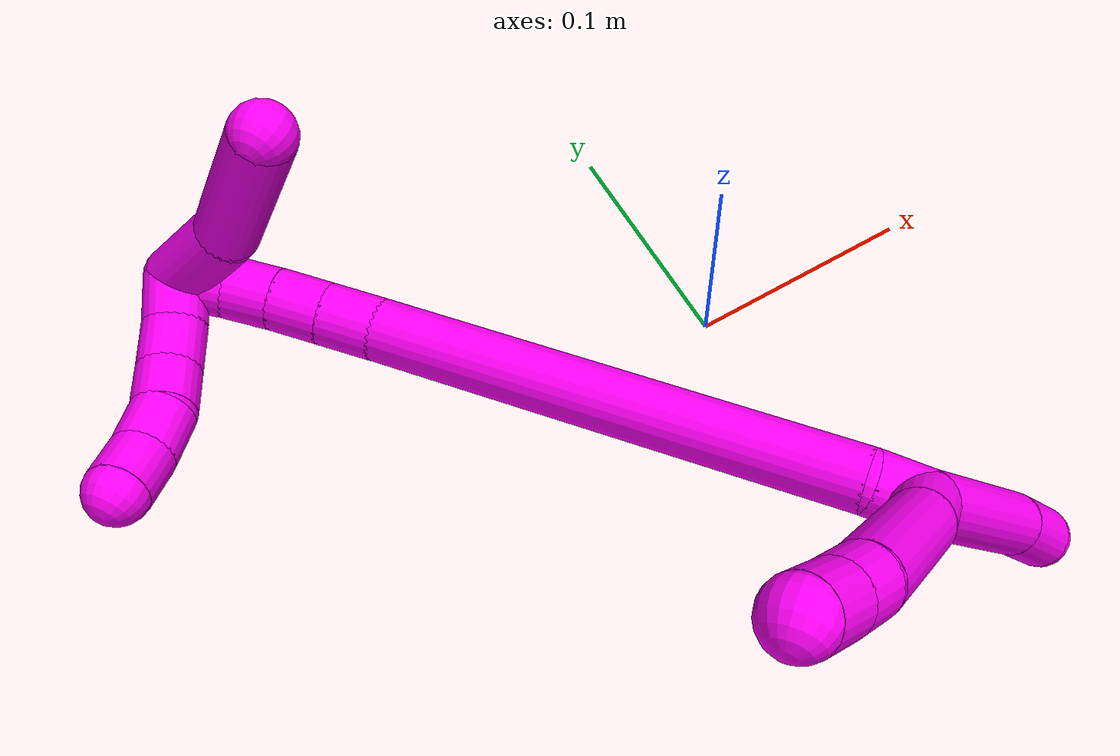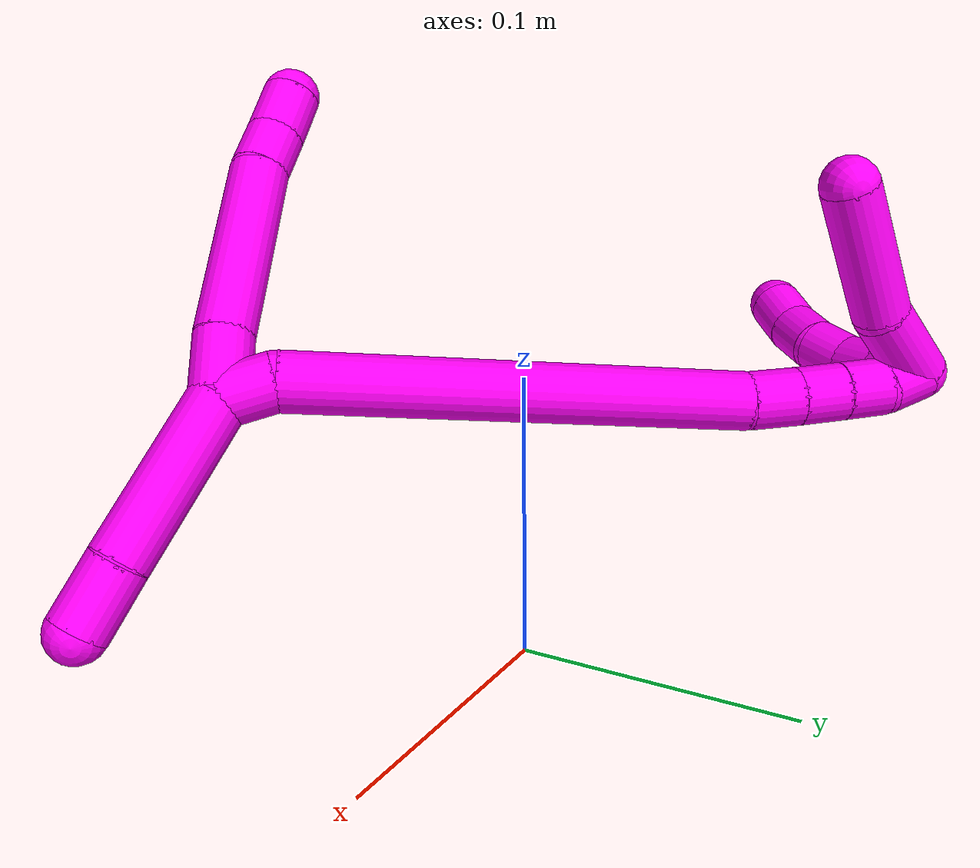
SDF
<sdf version="1.7">
 <world name="default">
  <model name="10">
   <static>0</static>
   <link name="10">
    <collision name="collision-cylinder-e_1_2_8">
     <pose>0.006536 0.007213 0.009404 -0.654298 0.504007 -0.174304</pose>
     <geometry><cylinder><radius>0.0125</radius><length>0.027069</length></cylinder></geometry>
     <surface>
      <friction><ode><mu>1.16</mu><mu2>1.16</mu2><slip1>0</slip1><slip2>0</slip2></ode></friction>
      <contact><ode><kp>1e+06</kp><kd>1</kd><max_vel>0</max_vel><min_depth>0.001</min_depth></ode></contact>
     </surface>
    </collision>
    <visual name="visual-cylinder-e_1_2_8">
     <pose>0.006536 0.007213 0.009404 -0.654298 0.504007 -0.174304</pose>
     <geometry><cylinder><radius>0.0125</radius><length>0.027069</length></cylinder></geometry>
     <material><ambient>1 0 0.964706 1</ambient></material>
    </visual>
    <collision name="collision-cylinder-e_2_8_9">
     <pose>0.029081 0.039341 0.045651 -0.748164 0.412064 -0.163724</pose>
     <geometry><cylinder><radius>0.0125</radius><length>0.07994</length></cylinder></geometry>
     <surface>
      <friction><ode><mu>1.16</mu><mu2>1.16</mu2><slip1>0</slip1><slip2>0</slip2></ode></friction>
      <contact><ode><kp>1e+06</kp><kd>1</kd><max_vel>0</max_vel><min_depth>0.001</min_depth></ode></contact>
     </surface>
    </collision>
    <visual name="visual-cylinder-e_2_8_9">
     <pose>0.029081 0.039341 0.045651 -0.748164 0.412064 -0.163724</pose>
     <geometry><cylinder><radius>0.0125</radius><length>0.07994</length></cylinder></geometry>
     <material><ambient>1 0 0.964706 1</ambient></material>
    </visual>
    <collision name="collision-cylinder-e_3_9_10">
     <pose>0.047538 0.071059 0.079495 -0.771075 0.245802 -0.10018</pose>
     <geometry><cylinder><radius>0.0125</radius><length>0.020126</length></cylinder></geometry>
     <surface>
      <friction><ode><mu>1.16</mu><mu2>1.16</mu2><slip1>0</slip1><slip2>0</slip2></ode></friction>
      <contact><ode><kp>1e+06</kp><kd>1</kd><max_vel>0</max_vel><min_depth>0.001</min_depth></ode></contact>
     </surface>
    </collision>
    <visual name="visual-cylinder-e_3_9_10">
     <pose>0.047538 0.071059 0.079495 -0.771075 0.245802 -0.10018</pose>
     <geometry><cylinder><radius>0.0125</radius><length>0.020126</length></cylinder></geometry>
     <material><ambient>1 0 0.964706 1</ambient></material>
    </visual>
    <collision name="collision-cylinder-e_4_10_6">
     <pose>0.053201 0.085969 0.093885 -0.831663 0.285004 -0.126542</pose>
     <geometry><cylinder><radius>0.0125</radius><length>0.022865</length></cylinder></geometry>
     <surface>
      <friction><ode><mu>1.16</mu><mu2>1.16</mu2><slip1>0</slip1><slip2>0</slip2></ode></friction>
      <contact><ode><kp>1e+06</kp><kd>1</kd><max_vel>0</max_vel><min_depth>0.001</min_depth></ode></contact>
     </surface>
    </collision>
    <visual name="visual-cylinder-e_4_10_6">
     <pose>0.053201 0.085969 0.093885 -0.831663 0.285004 -0.126542</pose>
     <geometry><cylinder><radius>0.0125</radius><length>0.022865</length></cylinder></geometry>
     <material><ambient>1 0 0.964706 1</ambient></material>
    </visual>
    <collision name="collision-cylinder-e_1_2_11">
     <pose>-0.00606 -0.031376 -0.016015 2.04275 -0.170351 -0.277099</pose>
     <geometry><cylinder><radius>0.0125</radius><length>0.071489</length></cylinder></geometry>
     <surface>
      <friction><ode><mu>1.16</mu><mu2>1.16</mu2><slip1>0</slip1><slip2>0</slip2></ode></friction>
      <contact><ode><kp>1e+06</kp><kd>1</kd><max_vel>0</max_vel><min_depth>0.001</min_depth></ode></contact>
     </surface>
    </collision>
    <visual name="visual-cylinder-e_1_2_11">
     <pose>-0.00606 -0.031376 -0.016015 2.04275 -0.170351 -0.277099</pose>
     <geometry><cylinder><radius>0.0125</radius><length>0.071489</length></cylinder></geometry>
     <material><ambient>1 0 0.964706 1</ambient></material>
    </visual>
    <collision name="collision-cylinder-e_2_11_5">
     <pose>-0.014992 -0.075679 -0.037309 1.95844 -0.202899 -0.300757</pose>
     <geometry><cylinder><radius>0.0125</radius><length>0.028511</length></cylinder></geometry>
     <surface>
      <friction><ode><mu>1.16</mu><mu2>1.16</mu2><slip1>0</slip1><slip2>0</slip2></ode></friction>
      <contact><ode><kp>1e+06</kp><kd>1</kd><max_vel>0</max_vel><min_depth>0.001</min_depth></ode></contact>
     </surface>
    </collision>
    <visual name="visual-cylinder-e_2_11_5">
     <pose>-0.014992 -0.075679 -0.037309 1.95844 -0.202899 -0.300757</pose>
     <geometry><cylinder><radius>0.0125</radius><length>0.028511</length></cylinder></geometry>
     <material><ambient>1 0 0.964706 1</ambient></material>
    </visual>
    <collision name="collision-cylinder-e_1_2_12">
     <pose>-0.005571 0.009662 0.001228 -1.44442 -0.519586 0.460043</pose>
     <geometry><cylinder><radius>0.0125</radius><length>0.022441</length></cylinder></geometry>
     <surface>
      <friction><ode><mu>1.16</mu><mu2>1.16</mu2><slip1>0</slip1><slip2>0</slip2></ode></friction>
      <contact><ode><kp>1e+06</kp><kd>1</kd><max_vel>0</max_vel><min_depth>0.001</min_depth></ode></contact>
     </surface>
    </collision>
    <visual name="visual-cylinder-e_1_2_12">
     <pose>-0.005571 0.009662 0.001228 -1.44442 -0.519586 0.460043</pose>
     <geometry><cylinder><radius>0.0125</radius><length>0.022441</length></cylinder></geometry>
     <material><ambient>1 0 0.964706 1</ambient></material>
    </visual>
    <collision name="collision-cylinder-e_2_12_13">
     <pose>-0.08365 0.084056 0.002171 -1.57519 -0.841991 0.84527</pose>
     <geometry><cylinder><radius>0.0125</radius><length>0.194398</length></cylinder></geometry>
     <surface>
      <friction><ode><mu>1.16</mu><mu2>1.16</mu2><slip1>0</slip1><slip2>0</slip2></ode></friction>
      <contact><ode><kp>1e+06</kp><kd>1</kd><max_vel>0</max_vel><min_depth>0.001</min_depth></ode></contact>
     </surface>
    </collision>
    <visual name="visual-cylinder-e_2_12_13">
     <pose>-0.08365 0.084056 0.002171 -1.57519 -0.841991 0.84527</pose>
     <geometry><cylinder><radius>0.0125</radius><length>0.194398</length></cylinder></geometry>
     <material><ambient>1 0 0.964706 1</ambient></material>
    </visual>
    <collision name="collision-cylinder-e_3_13_14">
     <pose>-0.163666 0.157138 0.002642 -1.48068 -0.730344 0.672156</pose>
     <geometry><cylinder><radius>0.0125</radius><length>0.02251</length></cylinder></geometry>
     <surface>
      <friction><ode><mu>1.16</mu><mu2>1.16</mu2><slip1>0</slip1><slip2>0</slip2></ode></friction>
      <contact><ode><kp>1e+06</kp><kd>1</kd><max_vel>0</max_vel><min_depth>0.001</min_depth></ode></contact>
     </surface>
    </collision>
    <visual name="visual-cylinder-e_3_13_14">
     <pose>-0.163666 0.157138 0.002642 -1.48068 -0.730344 0.672156</pose>
     <geometry><cylinder><radius>0.0125</radius><length>0.02251</length></cylinder></geometry>
     <material><ambient>1 0 0.964706 1</ambient></material>
    </visual>
    <collision name="collision-cylinder-e_4_14_15">
     <pose>-0.177879 0.173242 0.004208 -1.46643 -0.71028 0.644783</pose>
     <geometry><cylinder><radius>0.0125</radius><length>0.020567</length></cylinder></geometry>
     <surface>
      <friction><ode><mu>1.16</mu><mu2>1.16</mu2><slip1>0</slip1><slip2>0</slip2></ode></friction>
      <contact><ode><kp>1e+06</kp><kd>1</kd><max_vel>0</max_vel><min_depth>0.001</min_depth></ode></contact>
     </surface>
    </collision>
    <visual name="visual-cylinder-e_4_14_15">
     <pose>-0.177879 0.173242 0.004208 -1.46643 -0.71028 0.644783</pose>
     <geometry><cylinder><radius>0.0125</radius><length>0.020567</length></cylinder></geometry>
     <material><ambient>1 0 0.964706 1</ambient></material>
    </visual>
    <collision name="collision-cylinder-e_5_15_16">
     <pose>-0.191163 0.188452 0.006202 -1.41369 -0.716842 0.619281</pose>
     <geometry><cylinder><radius>0.0125</radius><length>0.020026</length></cylinder></geometry>
     <surface>
      <friction><ode><mu>1.16</mu><mu2>1.16</mu2><slip1>0</slip1><slip2>0</slip2></ode></friction>
      <contact><ode><kp>1e+06</kp><kd>1</kd><max_vel>0</max_vel><min_depth>0.001</min_depth></ode></contact>
     </surface>
    </collision>
    <visual name="visual-cylinder-e_5_15_16">
     <pose>-0.191163 0.188452 0.006202 -1.41369 -0.716842 0.619281</pose>
     <geometry><cylinder><radius>0.0125</radius><length>0.020026</length></cylinder></geometry>
     <material><ambient>1 0 0.964706 1</ambient></material>
    </visual>
    <collision name="collision-cylinder-e_6_16_1">
     <pose>-0.202611 0.204222 0.010168 -1.24757 -0.506954 0.36861</pose>
     <geometry><cylinder><radius>0.0125</radius><length>0.020059</length></cylinder></geometry>
     <surface>
      <friction><ode><mu>1.16</mu><mu2>1.16</mu2><slip1>0</slip1><slip2>0</slip2></ode></friction>
      <contact><ode><kp>1e+06</kp><kd>1</kd><max_vel>0</max_vel><min_depth>0.001</min_depth></ode></contact>
     </surface>
    </collision>
    <visual name="visual-cylinder-e_6_16_1">
     <pose>-0.202611 0.204222 0.010168 -1.24757 -0.506954 0.36861</pose>
     <geometry><cylinder><radius>0.0125</radius><length>0.020059</length></cylinder></geometry>
     <material><ambient>1 0 0.964706 1</ambient></material>
    </visual>
    <collision name="collision-cylinder-e_1_1_17">
     <pose>-0.188475 0.213827 0.008297 -2.87106 1.32183 -2.79504</pose>
     <geometry><cylinder><radius>0.0125</radius><length>0.039221</length></cylinder></geometry>
     <surface>
      <friction><ode><mu>1.16</mu><mu2>1.16</mu2><slip1>0</slip1><slip2>0</slip2></ode></friction>
      <contact><ode><kp>1e+06</kp><kd>1</kd><max_vel>0</max_vel><min_depth>0.001</min_depth></ode></contact>
     </surface>
    </collision>
    <visual name="visual-cylinder-e_1_1_17">
     <pose>-0.188475 0.213827 0.008297 -2.87106 1.32183 -2.79504</pose>
     <geometry><cylinder><radius>0.0125</radius><length>0.039221</length></cylinder></geometry>
     <material><ambient>1 0 0.964706 1</ambient></material>
    </visual>
    <collision name="collision-cylinder-e_2_17_4">
     <pose>-0.141398 0.225946 -0.00064 -1.94728 1.17763 -1.55279</pose>
     <geometry><cylinder><radius>0.0125</radius><length>0.060779</length></cylinder></geometry>
     <surface>
      <friction><ode><mu>1.16</mu><mu2>1.16</mu2><slip1>0</slip1><slip2>0</slip2></ode></friction>
      <contact><ode><kp>1e+06</kp><kd>1</kd><max_vel>0</max_vel><min_depth>0.001</min_depth></ode></contact>
     </surface>
    </collision>
    <visual name="visual-cylinder-e_2_17_4">
     <pose>-0.141398 0.225946 -0.00064 -1.94728 1.17763 -1.55279</pose>
     <geometry><cylinder><radius>0.0125</radius><length>0.060779</length></cylinder></geometry>
     <material><ambient>1 0 0.964706 1</ambient></material>
    </visual>
    <collision name="collision-cylinder-e_1_1_18">
     <pose>-0.206589 0.207785 0.021707 0.497232 0.089297 0.022684</pose>
     <geometry><cylinder><radius>0.0125</radius><length>0.02</length></cylinder></geometry>
     <surface>
      <friction><ode><mu>1.16</mu><mu2>1.16</mu2><slip1>0</slip1><slip2>0</slip2></ode></friction>
      <contact><ode><kp>1e+06</kp><kd>1</kd><max_vel>0</max_vel><min_depth>0.001</min_depth></ode></contact>
     </surface>
    </collision>
    <visual name="visual-cylinder-e_1_1_18">
     <pose>-0.206589 0.207785 0.021707 0.497232 0.089297 0.022684</pose>
     <geometry><cylinder><radius>0.0125</radius><length>0.02</length></cylinder></geometry>
     <material><ambient>1 0 0.964706 1</ambient></material>
    </visual>
    <collision name="collision-cylinder-e_2_18_19">
     <pose>-0.203418 0.199727 0.039619 0.346479 0.229982 0.040418</pose>
     <geometry><cylinder><radius>0.0125</radius><length>0.02</length></cylinder></geometry>
     <surface>
      <friction><ode><mu>1.16</mu><mu2>1.16</mu2><slip1>0</slip1><slip2>0</slip2></ode></friction>
      <contact><ode><kp>1e+06</kp><kd>1</kd><max_vel>0</max_vel><min_depth>0.001</min_depth></ode></contact>
     </surface>
    </collision>
    <visual name="visual-cylinder-e_2_18_19">
     <pose>-0.203418 0.199727 0.039619 0.346479 0.229982 0.040418</pose>
     <geometry><cylinder><radius>0.0125</radius><length>0.02</length></cylinder></geometry>
     <material><ambient>1 0 0.964706 1</ambient></material>
    </visual>
    <collision name="collision-cylinder-e_3_19_20">
     <pose>-0.196848 0.194229 0.05754 0.245096 0.443426 0.055513</pose>
     <geometry><cylinder><radius>0.0125</radius><length>0.02</length></cylinder></geometry>
     <surface>
      <friction><ode><mu>1.16</mu><mu2>1.16</mu2><slip1>0</slip1><slip2>0</slip2></ode></friction>
      <contact><ode><kp>1e+06</kp><kd>1</kd><max_vel>0</max_vel><min_depth>0.001</min_depth></ode></contact>
     </surface>
    </collision>
    <visual name="visual-cylinder-e_3_19_20">
     <pose>-0.196848 0.194229 0.05754 0.245096 0.443426 0.055513</pose>
     <geometry><cylinder><radius>0.0125</radius><length>0.02</length></cylinder></geometry>
     <material><ambient>1 0 0.964706 1</ambient></material>
    </visual>
    <collision name="collision-cylinder-e_4_20_21">
     <pose>-0.189986 0.191805 0.075964 0.024067 0.260032 0.003147</pose>
     <geometry><cylinder><radius>0.0125</radius><length>0.02</length></cylinder></geometry>
     <surface>
      <friction><ode><mu>1.16</mu><mu2>1.16</mu2><slip1>0</slip1><slip2>0</slip2></ode></friction>
      <contact><ode><kp>1e+06</kp><kd>1</kd><max_vel>0</max_vel><min_depth>0.001</min_depth></ode></contact>
     </surface>
    </collision>
    <visual name="visual-cylinder-e_4_20_21">
     <pose>-0.189986 0.191805 0.075964 0.024067 0.260032 0.003147</pose>
     <geometry><cylinder><radius>0.0125</radius><length>0.02</length></cylinder></geometry>
     <material><ambient>1 0 0.964706 1</ambient></material>
    </visual>
    <collision name="collision-cylinder-e_5_21_3">
     <pose>-0.183712 0.192826 0.094829 -0.135393 0.37937 -0.026033</pose>
     <geometry><cylinder><radius>0.0125</radius><length>0.02</length></cylinder></geometry>
     <surface>
      <friction><ode><mu>1.16</mu><mu2>1.16</mu2><slip1>0</slip1><slip2>0</slip2></ode></friction>
      <contact><ode><kp>1e+06</kp><kd>1</kd><max_vel>0</max_vel><min_depth>0.001</min_depth></ode></contact>
     </surface>
    </collision>
    <visual name="visual-cylinder-e_5_21_3">
     <pose>-0.183712 0.192826 0.094829 -0.135393 0.37937 -0.026033</pose>
     <geometry><cylinder><radius>0.0125</radius><length>0.02</length></cylinder></geometry>
     <material><ambient>1 0 0.964706 1</ambient></material>
    </visual>
    <collision name="collision-sphere-3">
     <pose>-0.180008 0.19408 0.104033 0 -0 0</pose>
     <geometry><sphere><radius>0.0125</radius></sphere></geometry>
     <surface>
      <friction><ode><mu>1.16</mu><mu2>1.16</mu2><slip1>0</slip1><slip2>0</slip2></ode></friction>
      <contact><ode><kp>1e+06</kp><kd>1</kd><max_vel>0</max_vel><min_depth>0.001</min_depth></ode></contact>
     </surface>
    </collision>
    <visual name="visual-sphere-3">
     <pose>-0.180008 0.19408 0.104033 0 -0 0</pose>
     <geometry><sphere><radius>0.0125</radius></sphere></geometry>
     <material><ambient>1 0 0.964706 1</ambient></material>
    </visual>
    <collision name="collision-sphere-21">
     <pose>-0.187415 0.191572 0.085625 0 -0 0</pose>
     <geometry><sphere><radius>0.0125</radius></sphere></geometry>
     <surface>
      <friction><ode><mu>1.16</mu><mu2>1.16</mu2><slip1>0</slip1><slip2>0</slip2></ode></friction>
      <contact><ode><kp>1e+06</kp><kd>1</kd><max_vel>0</max_vel><min_depth>0.001</min_depth></ode></contact>
     </surface>
    </collision>
    <visual name="visual-sphere-21">
     <pose>-0.187415 0.191572 0.085625 0 -0 0</pose>
     <geometry><sphere><radius>0.0125</radius></sphere></geometry>
     <material><ambient>1 0 0.964706 1</ambient></material>
    </visual>
    <collision name="collision-sphere-20">
     <pose>-0.192557 0.192037 0.066303 0 -0 0</pose>
     <geometry><sphere><radius>0.0125</radius></sphere></geometry>
     <surface>
      <friction><ode><mu>1.16</mu><mu2>1.16</mu2><slip1>0</slip1><slip2>0</slip2></ode></friction>
      <contact><ode><kp>1e+06</kp><kd>1</kd><max_vel>0</max_vel><min_depth>0.001</min_depth></ode></contact>
     </surface>
    </collision>
    <visual name="visual-sphere-20">
     <pose>-0.192557 0.192037 0.066303 0 -0 0</pose>
     <geometry><sphere><radius>0.0125</radius></sphere></geometry>
     <material><ambient>1 0 0.964706 1</ambient></material>
    </visual>
    <collision name="collision-sphere-19">
     <pose>-0.201138 0.196421 0.048777 0 -0 0</pose>
     <geometry><sphere><radius>0.0125</radius></sphere></geometry>
     <surface>
      <friction><ode><mu>1.16</mu><mu2>1.16</mu2><slip1>0</slip1><slip2>0</slip2></ode></friction>
      <contact><ode><kp>1e+06</kp><kd>1</kd><max_vel>0</max_vel><min_depth>0.001</min_depth></ode></contact>
     </surface>
    </collision>
    <visual name="visual-sphere-19">
     <pose>-0.201138 0.196421 0.048777 0 -0 0</pose>
     <geometry><sphere><radius>0.0125</radius></sphere></geometry>
     <material><ambient>1 0 0.964706 1</ambient></material>
    </visual>
    <collision name="collision-sphere-11">
     <pose>-0.012119 -0.062753 -0.032031 0 -0 0</pose>
     <geometry><sphere><radius>0.0125</radius></sphere></geometry>
     <surface>
      <friction><ode><mu>1.16</mu><mu2>1.16</mu2><slip1>0</slip1><slip2>0</slip2></ode></friction>
      <contact><ode><kp>1e+06</kp><kd>1</kd><max_vel>0</max_vel><min_depth>0.001</min_depth></ode></contact>
     </surface>
    </collision>
    <visual name="visual-sphere-11">
     <pose>-0.012119 -0.062753 -0.032031 0 -0 0</pose>
     <geometry><sphere><radius>0.0125</radius></sphere></geometry>
     <material><ambient>1 0 0.964706 1</ambient></material>
    </visual>
    <collision name="collision-sphere-6">
     <pose>0.056415 0.094077 0.101276 0 -0 0</pose>
     <geometry><sphere><radius>0.0125</radius></sphere></geometry>
     <surface>
      <friction><ode><mu>1.16</mu><mu2>1.16</mu2><slip1>0</slip1><slip2>0</slip2></ode></friction>
      <contact><ode><kp>1e+06</kp><kd>1</kd><max_vel>0</max_vel><min_depth>0.001</min_depth></ode></contact>
     </surface>
    </collision>
    <visual name="visual-sphere-6">
     <pose>0.056415 0.094077 0.101276 0 -0 0</pose>
     <geometry><sphere><radius>0.0125</radius></sphere></geometry>
     <material><ambient>1 0 0.964706 1</ambient></material>
    </visual>
    <collision name="collision-sphere-10">
     <pose>0.049986 0.077861 0.086495 0 -0 0</pose>
     <geometry><sphere><radius>0.0125</radius></sphere></geometry>
     <surface>
      <friction><ode><mu>1.16</mu><mu2>1.16</mu2><slip1>0</slip1><slip2>0</slip2></ode></friction>
      <contact><ode><kp>1e+06</kp><kd>1</kd><max_vel>0</max_vel><min_depth>0.001</min_depth></ode></contact>
     </surface>
    </collision>
    <visual name="visual-sphere-10">
     <pose>0.049986 0.077861 0.086495 0 -0 0</pose>
     <geometry><sphere><radius>0.0125</radius></sphere></geometry>
     <material><ambient>1 0 0.964706 1</ambient></material>
    </visual>
    <collision name="collision-sphere-9">
     <pose>0.045089 0.064257 0.072495 0 -0 0</pose>
     <geometry><sphere><radius>0.0125</radius></sphere></geometry>
     <surface>
      <friction><ode><mu>1.16</mu><mu2>1.16</mu2><slip1>0</slip1><slip2>0</slip2></ode></friction>
      <contact><ode><kp>1e+06</kp><kd>1</kd><max_vel>0</max_vel><min_depth>0.001</min_depth></ode></contact>
     </surface>
    </collision>
    <visual name="visual-sphere-9">
     <pose>0.045089 0.064257 0.072495 0 -0 0</pose>
     <geometry><sphere><radius>0.0125</radius></sphere></geometry>
     <material><ambient>1 0 0.964706 1</ambient></material>
    </visual>
    <collision name="collision-sphere-2">
     <geometry><sphere><radius>0.0125</radius></sphere></geometry>
     <surface>
      <friction><ode><mu>1.16</mu><mu2>1.16</mu2><slip1>0</slip1><slip2>0</slip2></ode></friction>
      <contact><ode><kp>1e+06</kp><kd>1</kd><max_vel>0</max_vel><min_depth>0.001</min_depth></ode></contact>
     </surface>
    </collision>
    <visual name="visual-sphere-2">
     <geometry><sphere><radius>0.0125</radius></sphere></geometry>
     <material><ambient>1 0 0.964706 1</ambient></material>
    </visual>
    <collision name="collision-sphere-8">
     <pose>0.013073 0.014426 0.018808 0 -0 0</pose>
     <geometry><sphere><radius>0.0125</radius></sphere></geometry>
     <surface>
      <friction><ode><mu>1.16</mu><mu2>1.16</mu2><slip1>0</slip1><slip2>0</slip2></ode></friction>
      <contact><ode><kp>1e+06</kp><kd>1</kd><max_vel>0</max_vel><min_depth>0.001</min_depth></ode></contact>
     </surface>
    </collision>
    <visual name="visual-sphere-8">
     <pose>0.013073 0.014426 0.018808 0 -0 0</pose>
     <geometry><sphere><radius>0.0125</radius></sphere></geometry>
     <material><ambient>1 0 0.964706 1</ambient></material>
    </visual>
    <collision name="collision-sphere-5">
     <pose>-0.017865 -0.088606 -0.042587 0 -0 0</pose>
     <geometry><sphere><radius>0.0125</radius></sphere></geometry>
     <surface>
      <friction><ode><mu>1.16</mu><mu2>1.16</mu2><slip1>0</slip1><slip2>0</slip2></ode></friction>
      <contact><ode><kp>1e+06</kp><kd>1</kd><max_vel>0</max_vel><min_depth>0.001</min_depth></ode></contact>
     </surface>
    </collision>
    <visual name="visual-sphere-5">
     <pose>-0.017865 -0.088606 -0.042587 0 -0 0</pose>
     <geometry><sphere><radius>0.0125</radius></sphere></geometry>
     <material><ambient>1 0 0.964706 1</ambient></material>
    </visual>
    <collision name="collision-sphere-12">
     <pose>-0.011142 0.019324 0.002455 0 -0 0</pose>
     <geometry><sphere><radius>0.0125</radius></sphere></geometry>
     <surface>
      <friction><ode><mu>1.16</mu><mu2>1.16</mu2><slip1>0</slip1><slip2>0</slip2></ode></friction>
      <contact><ode><kp>1e+06</kp><kd>1</kd><max_vel>0</max_vel><min_depth>0.001</min_depth></ode></contact>
     </surface>
    </collision>
    <visual name="visual-sphere-12">
     <pose>-0.011142 0.019324 0.002455 0 -0 0</pose>
     <geometry><sphere><radius>0.0125</radius></sphere></geometry>
     <material><ambient>1 0 0.964706 1</ambient></material>
    </visual>
    <collision name="collision-sphere-13">
     <pose>-0.156158 0.148788 0.001887 0 -0 0</pose>
     <geometry><sphere><radius>0.0125</radius></sphere></geometry>
     <surface>
      <friction><ode><mu>1.16</mu><mu2>1.16</mu2><slip1>0</slip1><slip2>0</slip2></ode></friction>
      <contact><ode><kp>1e+06</kp><kd>1</kd><max_vel>0</max_vel><min_depth>0.001</min_depth></ode></contact>
     </surface>
    </collision>
    <visual name="visual-sphere-13">
     <pose>-0.156158 0.148788 0.001887 0 -0 0</pose>
     <geometry><sphere><radius>0.0125</radius></sphere></geometry>
     <material><ambient>1 0 0.964706 1</ambient></material>
    </visual>
    <collision name="collision-sphere-14">
     <pose>-0.171174 0.165488 0.003396 0 -0 0</pose>
     <geometry><sphere><radius>0.0125</radius></sphere></geometry>
     <surface>
      <friction><ode><mu>1.16</mu><mu2>1.16</mu2><slip1>0</slip1><slip2>0</slip2></ode></friction>
      <contact><ode><kp>1e+06</kp><kd>1</kd><max_vel>0</max_vel><min_depth>0.001</min_depth></ode></contact>
     </surface>
    </collision>
    <visual name="visual-sphere-14">
     <pose>-0.171174 0.165488 0.003396 0 -0 0</pose>
     <geometry><sphere><radius>0.0125</radius></sphere></geometry>
     <material><ambient>1 0 0.964706 1</ambient></material>
    </visual>
    <collision name="collision-sphere-15">
     <pose>-0.184585 0.180996 0.005021 0 -0 0</pose>
     <geometry><sphere><radius>0.0125</radius></sphere></geometry>
     <surface>
      <friction><ode><mu>1.16</mu><mu2>1.16</mu2><slip1>0</slip1><slip2>0</slip2></ode></friction>
      <contact><ode><kp>1e+06</kp><kd>1</kd><max_vel>0</max_vel><min_depth>0.001</min_depth></ode></contact>
     </surface>
    </collision>
    <visual name="visual-sphere-15">
     <pose>-0.184585 0.180996 0.005021 0 -0 0</pose>
     <geometry><sphere><radius>0.0125</radius></sphere></geometry>
     <material><ambient>1 0 0.964706 1</ambient></material>
    </visual>
    <collision name="collision-sphere-16">
     <pose>-0.197742 0.195908 0.007383 0 -0 0</pose>
     <geometry><sphere><radius>0.0125</radius></sphere></geometry>
     <surface>
      <friction><ode><mu>1.16</mu><mu2>1.16</mu2><slip1>0</slip1><slip2>0</slip2></ode></friction>
      <contact><ode><kp>1e+06</kp><kd>1</kd><max_vel>0</max_vel><min_depth>0.001</min_depth></ode></contact>
     </surface>
    </collision>
    <visual name="visual-sphere-16">
     <pose>-0.197742 0.195908 0.007383 0 -0 0</pose>
     <geometry><sphere><radius>0.0125</radius></sphere></geometry>
     <material><ambient>1 0 0.964706 1</ambient></material>
    </visual>
    <collision name="collision-sphere-1">
     <pose>-0.207481 0.212536 0.012953 0 -0 0</pose>
     <geometry><sphere><radius>0.0125</radius></sphere></geometry>
     <surface>
      <friction><ode><mu>1.16</mu><mu2>1.16</mu2><slip1>0</slip1><slip2>0</slip2></ode></friction>
      <contact><ode><kp>1e+06</kp><kd>1</kd><max_vel>0</max_vel><min_depth>0.001</min_depth></ode></contact>
     </surface>
    </collision>
    <visual name="visual-sphere-1">
     <pose>-0.207481 0.212536 0.012953 0 -0 0</pose>
     <geometry><sphere><radius>0.0125</radius></sphere></geometry>
     <material><ambient>1 0 0.964706 1</ambient></material>
    </visual>
    <collision name="collision-sphere-18">
     <pose>-0.205697 0.203034 0.030461 0 -0 0</pose>
     <geometry><sphere><radius>0.0125</radius></sphere></geometry>
     <surface>
      <friction><ode><mu>1.16</mu><mu2>1.16</mu2><slip1>0</slip1><slip2>0</slip2></ode></friction>
      <contact><ode><kp>1e+06</kp><kd>1</kd><max_vel>0</max_vel><min_depth>0.001</min_depth></ode></contact>
     </surface>
    </collision>
    <visual name="visual-sphere-18">
     <pose>-0.205697 0.203034 0.030461 0 -0 0</pose>
     <geometry><sphere><radius>0.0125</radius></sphere></geometry>
     <material><ambient>1 0 0.964706 1</ambient></material>
    </visual>
    <collision name="collision-sphere-17">
     <pose>-0.169469 0.215118 0.00364 0 -0 0</pose>
     <geometry><sphere><radius>0.0125</radius></sphere></geometry>
     <surface>
      <friction><ode><mu>1.16</mu><mu2>1.16</mu2><slip1>0</slip1><slip2>0</slip2></ode></friction>
      <contact><ode><kp>1e+06</kp><kd>1</kd><max_vel>0</max_vel><min_depth>0.001</min_depth></ode></contact>
     </surface>
    </collision>
    <visual name="visual-sphere-17">
     <pose>-0.169469 0.215118 0.00364 0 -0 0</pose>
     <geometry><sphere><radius>0.0125</radius></sphere></geometry>
     <material><ambient>1 0 0.964706 1</ambient></material>
    </visual>
    <collision name="collision-sphere-4">
     <pose>-0.113327 0.236773 -0.004921 0 -0 0</pose>
     <geometry><sphere><radius>0.0125</radius></sphere></geometry>
     <surface>
      <friction><ode><mu>1.16</mu><mu2>1.16</mu2><slip1>0</slip1><slip2>0</slip2></ode></friction>
      <contact><ode><kp>1e+06</kp><kd>1</kd><max_vel>0</max_vel><min_depth>0.001</min_depth></ode></contact>
     </surface>
    </collision>
    <visual name="visual-sphere-4">
     <pose>-0.113327 0.236773 -0.004921 0 -0 0</pose>
     <geometry><sphere><radius>0.0125</radius></sphere></geometry>
     <material><ambient>1 0 0.964706 1</ambient></material>
    </visual>
    <inertial>
     <pose>-0.084539 0.100946 0.016594 0 -0 0</pose>
     <mass>0.75</mass>
     <inertia><ixx>0.000649</ixx><ixy>0</ixy><ixz>0</ixz><iyy>0.000708</iyy><iyz>0</iyz><izz>1e-05</izz></inertia>
    </inertial>
   </link>
   <pose>0.001558 -0.134144 0.075288 1.4897 -0.816498 -0.855304</pose>
  </model>
 </world>
</sdf>
